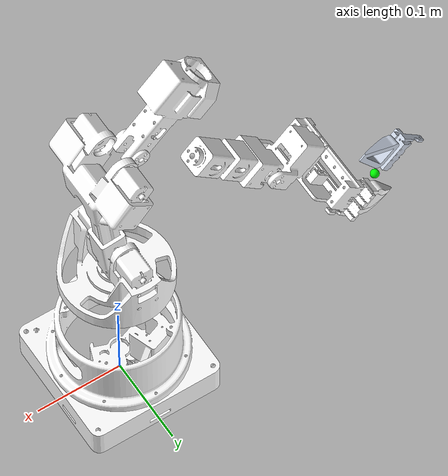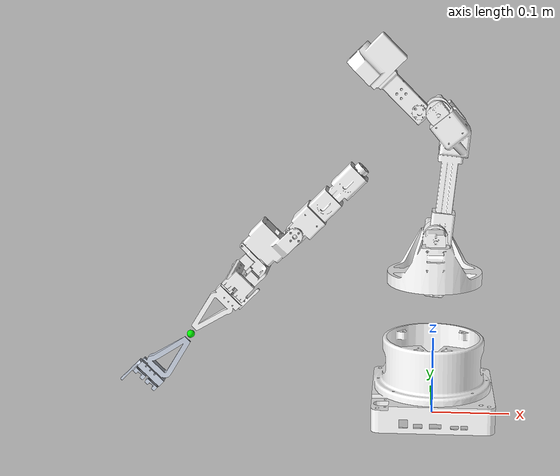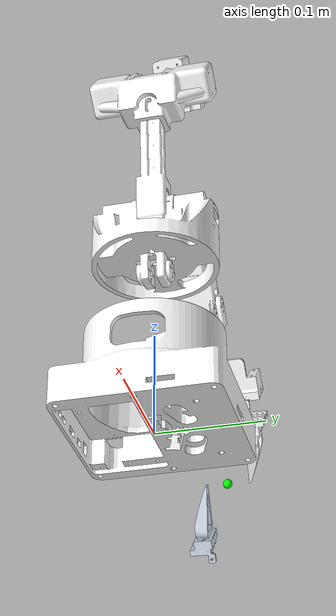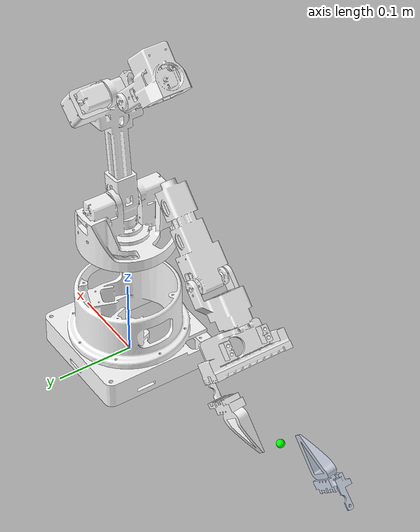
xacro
<?xml version="1.0"?>
<robot xmlns:xacro="http://www.ros.org/wiki/xacro" name="alicia_duo_descriptions">
    <xacro:arg name="initial_positions_file" default="initial_positions.yaml" />

    <!-- Import alicia_duo_descriptions urdf file -->
    <xacro:include filename="$(find alicia_duo_descriptions)/urdf/alicia_duo_with_gripper.urdf" />

    <!-- Import control_xacro -->
    <xacro:include filename="alicia_duo_descriptions.ros2_control.xacro" />

    <xacro:alicia_duo_descriptions_ros2_control name="AliciaDuoSystem" initial_positions_file="$(arg initial_positions_file)"/>
</robot>

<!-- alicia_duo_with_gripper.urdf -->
<robot
  name="alicia_duo_descriptions">
  <mujoco>
    <compiler meshdir="../meshes" balanceinertia="true"  discardvisual="false" />
  </mujoco>
  <link
    name="base_link">
    <visual>
      <origin
        xyz="0 0 0"
        rpy="0 0 0" />
      <geometry>
        <mesh
          filename="package://alicia_duo_descriptions/meshes/base_link.STL" />
      </geometry>
      <material
        name="">
        <color
          rgba="1 1 1 1" />
      </material>
    </visual>
    <collision>
      <origin
        xyz="0 0 0"
        rpy="0 0 0" />
      <geometry>
        <mesh
          filename="package://alicia_duo_descriptions/meshes/base_link.STL" />
      </geometry>
    </collision>
  </link>
  <link
    name="Link1">
    <inertial>
      <origin
        xyz="-6.25858197295685E-05 7.92213122987762E-05 -0.0125707541315971"
        rpy="0 0 0" />
      <mass
        value="0.203075737500143" />
      <inertia
        ixx="0.000235905198022555"
        ixy="7.61837858539045E-07"
        ixz="-2.9280595447193E-07"
        iyy="0.000131461412426022"
        iyz="-9.88206643610389E-07"
        izz="0.000304852104532108" />
    </inertial>
    <visual>
      <origin
        xyz="0 0 0"
        rpy="0 0 0" />
      <geometry>
        <mesh
          filename="package://alicia_duo_descriptions/meshes/Link1.STL" />
      </geometry>
      <material
        name="">
        <color
          rgba="1 1 1 1" />
      </material>
    </visual>
    <collision>
      <origin
        xyz="0 0 0"
        rpy="0 0 0" />
      <geometry>
        <mesh
          filename="package://alicia_duo_descriptions/meshes/Link1.STL" />
      </geometry>
    </collision>
  </link>
  <joint
    name="Joint1"
    type="revolute">
    <origin
      xyz="0 0 0.1445"
      rpy="0 0 0" />
    <parent
      link="base_link" />
    <child
      link="Link1" />
    <axis
      xyz="0 0 1" />
    <limit
      lower="-2.16"
      upper="2.16"
      effort="12"
      velocity="5" />
  </joint>
  <link
    name="Link2">
    <inertial>
      <origin
        xyz="0.152520863780152 0.00121050175643325 -2.60950688970463E-05"
        rpy="0 0 0" />
      <mass
        value="0.228750683078605" />
      <inertia
        ixx="0.000128107393781261"
        ixy="-1.13054976540084E-06"
        ixz="-3.12979772835143E-06"
        iyy="0.000222403637398375"
        iyz="1.86391232896856E-08"
        izz="0.000138515787941709" />
    </inertial>
    <visual>
      <origin
        xyz="0 0 0"
        rpy="0 0 0" />
      <geometry>
        <mesh
          filename="package://alicia_duo_descriptions/meshes/Link2.STL" />
      </geometry>
      <material
        name="">
        <color
          rgba="1 1 1 1" />
      </material>
    </visual>
    <collision>
      <origin
        xyz="0 0 0"
        rpy="0 0 0" />
      <geometry>
        <mesh
          filename="package://alicia_duo_descriptions/meshes/Link2.STL" />
      </geometry>
    </collision>
  </link>
  <joint
    name="Joint2"
    type="revolute">
    <origin
      xyz="0 0 0.025106"
      rpy="1.5708 -1.5708 0" />
    <parent
      link="Link1" />
    <child
      link="Link2" />
    <axis
      xyz="0 0 -1" />
    <limit
      lower="-3.14"
      upper="3.14"
      effort="12"
      velocity="5" />
  </joint>
  <link
    name="Link3">
    <inertial>
      <origin
        xyz="0.05912098865161 -0.00292884026418549 -0.000206870084897278"
        rpy="0 0 0" />
      <mass
        value="0.0902084989642731" />
      <inertia
        ixx="2.95841837376625E-05"
        ixy="2.18437703523349E-06"
        ixz="5.1039314115162E-06"
        iyy="7.14586965989716E-05"
        iyz="-3.76178023735153E-07"
        izz="7.59377961316667E-05" />
    </inertial>
    <visual>
      <origin
        xyz="0 0 0"
        rpy="0 0 0" />
      <geometry>
        <mesh
          filename="package://alicia_duo_descriptions/meshes/Link3.STL" />
      </geometry>
      <material
        name="">
        <color
          rgba="1 1 1 1" />
      </material>
    </visual>
    <collision>
      <origin
        xyz="0 0 0"
        rpy="0 0 0" />
      <geometry>
        <mesh
          filename="package://alicia_duo_descriptions/meshes/Link3.STL" />
      </geometry>
    </collision>
  </link>
  <joint
    name="Joint3"
    type="revolute">
    <origin
      xyz="0.22367 0.022494 -5E-05"
      rpy="0 0 2.3562" />
    <parent
      link="Link2" />
    <child
      link="Link3" />
    <axis
      xyz="0 0 -1" />
    <limit
      lower="-3.14"
      upper="3.14"
      effort="12"
      velocity="5" />
  </joint>
  <link
    name="Link4">
    <inertial>
      <origin
        xyz="-0.000205267063245973 0.000325243129580035 0.0643235983472444"
        rpy="0 0 0" />
      <mass
        value="0.0791974889780253" />
      <inertia
        ixx="2.47725339125505E-05"
        ixy="3.55587182995024E-10"
        ixz="7.3334971760673E-08"
        iyy="2.46627995216068E-05"
        iyz="-3.46992272423732E-07"
        izz="1.52344176742998E-05" />
    </inertial>
    <visual>
      <origin
        xyz="0 0 0"
        rpy="0 0 0" />
      <geometry>
        <mesh
          filename="package://alicia_duo_descriptions/meshes/Link4.STL" />
      </geometry>
      <material
        name="">
        <color
          rgba="1 1 1 1" />
      </material>
    </visual>
    <collision>
      <origin
        xyz="0 0 0"
        rpy="0 0 0" />
      <geometry>
        <mesh
          filename="package://alicia_duo_descriptions/meshes/Link4.STL" />
      </geometry>
    </collision>
  </link>
  <joint
    name="Joint4"
    type="revolute">
    <origin
      xyz="0.0988 0.00211 -0.0001"
      rpy="1.5708 0 1.5708" />
    <parent
      link="Link3" />
    <child
      link="Link4" />
    <axis
      xyz="0 0 -1" />
    <limit
      lower="-3.14"
      upper="3.14"
      effort="12"
      velocity="5" />
  </joint>
  <link
    name="Link5">
    <inertial>
      <origin
        xyz="-0.0151916000802023 -0.035577609744867 0.00100363196557324"
        rpy="0 0 0" />
      <mass
        value="0.0472226666291309" />
      <inertia
        ixx="1.20278315375537E-05"
        ixy="-1.17970471503373E-06"
        ixz="-1.02456210599242E-07"
        iyy="1.88455470481329E-05"
        iyz="-1.61484723405352E-07"
        izz="1.40563866814419E-05" />
    </inertial>
    <visual>
      <origin
        xyz="0 0 0"
        rpy="0 0 0" />
      <geometry>
        <mesh
          filename="package://alicia_duo_descriptions/meshes/Link5.STL" />
      </geometry>
      <material
        name="">
        <color
          rgba="1 1 1 1" />
      </material>
    </visual>
    <collision>
      <origin
        xyz="0 0 0"
        rpy="0 0 0" />
      <geometry>
        <mesh
          filename="package://alicia_duo_descriptions/meshes/Link5.STL" />
      </geometry>
    </collision>
  </link>
  <joint
    name="Joint5"
    type="revolute">
    <origin
      xyz="0 -0.0007 0.12011"
      rpy="-1.5708 0 0" />
    <parent
      link="Link4" />
    <child
      link="Link5" />
    <axis
      xyz="0 0 -1" />
    <limit
      lower="-3.14"
      upper="3.14"
      effort="12"
      velocity="5" />
  </joint>
  <link
    name="Link6">
    <inertial>
      <origin
        xyz="-2.29000106100052E-08 -6.06077605290467E-09 -0.00146273730918529"
        rpy="0 0 0" />
      <mass
        value="0.000754043064008528" />
      <inertia
        ixx="1.92362324543726E-08"
        ixy="2.02419408834135E-13"
        ixz="1.54264012087565E-14"
        iyy="1.92356438139941E-08"
        iyz="3.66078536787572E-15"
        izz="3.70116466604047E-08" />
    </inertial>
    <visual>
      <origin
        xyz="0 0 0"
        rpy="0 0 0" />
      <geometry>
        <mesh
          filename="package://alicia_duo_descriptions/meshes/Link6.STL" />
      </geometry>
      <material
        name="">
        <color
          rgba="1 1 1 1" />
      </material>
    </visual>
    <collision>
      <origin
        xyz="0 0 0"
        rpy="0 0 0" />
      <geometry>
        <mesh
          filename="package://alicia_duo_descriptions/meshes/Link6.STL" />
      </geometry>
    </collision>
  </link>
  <joint
    name="Joint6"
    type="revolute">
    <origin
      xyz="-0.0038938 -0.0573 0.0008"
      rpy="1.5708 0 0" />
    <parent
      link="Link5" />
    <child
      link="Link6" />
    <axis
      xyz="0 0 -1" />
    <limit
      lower="-3.14"
      upper="3.14"
      effort="12"
      velocity="5" />
  </joint>
  <link
    name="Grasp_base">
    <inertial>
      <origin
        xyz="-0.01841113801577 0.000862734870750302 0.0339710264842798"
        rpy="0 0 0" />
      <mass
        value="0.13604884360545" />
      <inertia
        ixx="7.27853781685838E-05"
        ixy="3.41504362452082E-08"
        ixz="1.60963274946906E-06"
        iyy="2.99495582533924E-05"
        iyz="9.99190740884026E-07"
        izz="7.95564628246971E-05" />
    </inertial>
    <visual>
      <origin
        xyz="0 0 0"
        rpy="0 0 0" />
      <geometry>
        <mesh
          filename="package://alicia_duo_descriptions/meshes/Grasp_base.STL" />
      </geometry>
      <material
        name="">
        <color
          rgba="1 1 1 1" />
      </material>
    </visual>
    <collision>
      <origin
        xyz="0 0 0"
        rpy="0 0 0" />
      <geometry>
        <mesh
          filename="package://alicia_duo_descriptions/meshes/Grasp_base.STL" />
      </geometry>
    </collision>
  </link>
  <joint
    name="Joint6_to_gripper_base"
    type="fixed">
    <origin
      xyz="0 0 0"
      rpy="0 0 0" />
    <parent
      link="Link6" />
    <child
      link="Grasp_base" />
    <axis
      xyz="0 0 0" />
  </joint>
  <link
    name="Link7">
    <inertial>
      <origin
        xyz="0.00110740859468716 -0.0505406087264605 0.00928374528946711"
        rpy="0 0 0" />
      <mass
        value="0.0243492837152759" />
      <inertia
        ixx="9.48475810350875E-06"
        ixy="1.12616534990615E-06"
        ixz="-1.29347870071083E-07"
        iyy="4.30364201605636E-06"
        iyz="1.0784812114242E-06"
        izz="1.21997143402446E-05" />
    </inertial>
    <visual>
      <origin
        xyz="0 0 0"
        rpy="0 0 0" />
      <geometry>
        <mesh
          filename="package://alicia_duo_descriptions/meshes/Link7.STL" />
      </geometry>
      <material
        name="">
        <color
          rgba="1 1 1 1" />
      </material>
    </visual>
    <collision>
      <origin
        xyz="0 0 0"
        rpy="0 0 0" />
      <geometry>
        <mesh
          filename="package://alicia_duo_descriptions/meshes/Link7.STL" />
      </geometry>
    </collision>
  </link>
  <joint
    name="left_finger"
    type="prismatic">
    <origin
      xyz="0.00275 -0.025 0.13779"
      rpy="1.5451 0 0" />
    <parent
      link="Grasp_base" />
    <child
      link="Link7" />
    <axis
      xyz="0 0 1" />
    <limit
      lower="-0.022"
      upper="0"
      effort="5"
      velocity="10" />
  </joint>
  <link
    name="Link8">
    <inertial>
      <origin
        xyz="0.00109597192005223 0.0498868509472224 0.0118634588904307"
        rpy="0 0 0" />
      <mass
        value="0.0243228050977196" />
      <inertia
        ixx="9.45357028936119E-06"
        ixy="-1.11057133705082E-06"
        ixz="-1.85645517199125E-07"
        iyy="4.42974962436958E-06"
        iyz="-1.4734381267566E-06"
        izz="1.20341513240267E-05" />
    </inertial>
    <visual>
      <origin
        xyz="0 0 0"
        rpy="0 0 0" />
      <geometry>
        <mesh
          filename="package://alicia_duo_descriptions/meshes/Link8.STL" />
      </geometry>
      <material
        name="">
        <color
          rgba="0.807843137254902 0.843137254901961 0.905882352941176 1" />
      </material>
    </visual>
    <collision>
      <origin
        xyz="0 0 0"
        rpy="0 0 0" />
      <geometry>
        <mesh
          filename="package://alicia_duo_descriptions/meshes/Link8.STL" />
      </geometry>
    </collision>
  </link>
  <joint
    name="right_finger"
    type="prismatic">
    <origin
      xyz="0.00275 0.025 0.13768"
      rpy="-1.5965 0 0" />
    <parent
      link="Grasp_base" />
    <child
      link="Link8" />
    <axis
      xyz="0 0 -1" />
    <limit
      lower="0"
      upper="0.022"
      effort="5"
      velocity="10" />
    <mimic joint="left_finger" multiplier="-1" offset="0"/>

  </joint>
  <link
    name="tool0">
    <visual>
      <origin
        xyz="0 0 0"
        rpy="0 0 0" />
      <geometry>
        <sphere radius="0.005" /> <!-- 定义一个半径为0.02米的小球体 -->
      </geometry>
      <material
        name="green_virtual_sphere_material"> <!-- 可以给材质起个名字 -->
        <color
          rgba="0 1 0 1" /> <!-- 绿色 (R G B A)，A为1表示不透明 -->
      </material>
    </visual>
  </link>
  <joint
    name="Grasp2tool"
    type="fixed">
    <origin
      xyz="0.00275 0.0008332 0.13779"
      rpy="0 0 0" />
    <parent
      link="Grasp_base" />
    <child
      link="tool0" />
    <axis
      xyz="0 0 0" />
  </joint>
</robot>
